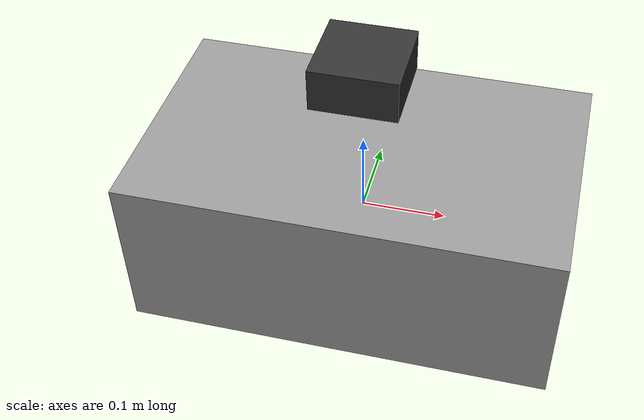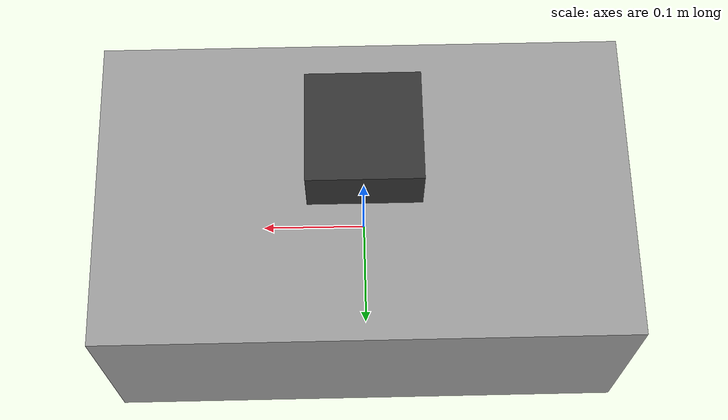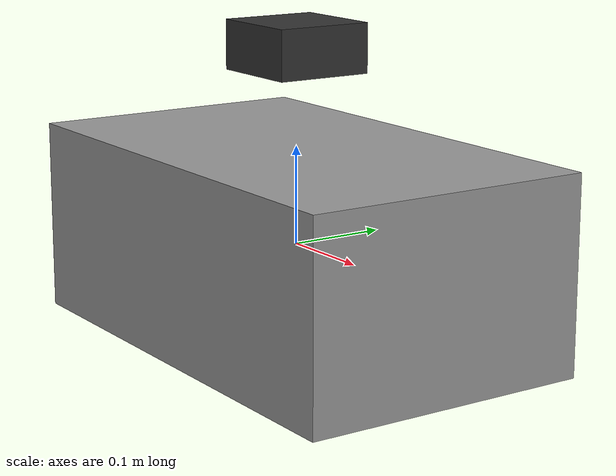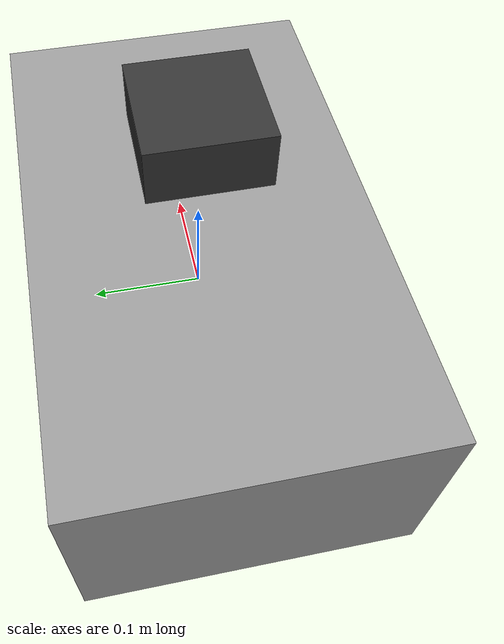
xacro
<?xml version="1.0" ?>
<robot name="mobile_robot">
  <!-- Robot base -->
  <link name="base_link">
    <visual>
      <geometry>
        <box size="0.5 0.3 0.2"/>
      </geometry>
      <material name="base_color">
        <color rgba="0.6 0.6 0.6 1.0"/>
      </material>
    </visual>
  </link>

  <!-- Stereo camera -->
  <link name="stereo_camera">
    <visual>
      <geometry>
        <box size="0.1 0.1 0.05"/>
      </geometry>
      <material name="camera_color">
        <color rgba="0.2 0.2 0.2 1.0"/>
      </material>
    </visual>
  </link>

  <!-- Joint connecting camera to base -->
  <joint name="camera_joint" type="fixed">
    <parent link="base_link"/>
    <child link="stereo_camera"/>
    <origin xyz="0.0 0.0 0.2"/> <!-- Adjust position as necessary -->
  </joint>

  <!-- Left and Right Wheels -->
  <link name="left_wheel"/>
  <link name="right_wheel"/>

  <joint name="left_wheel_joint" type="continuous">
    <parent link="base_link"/>
    <child link="left_wheel"/>
    <origin xyz="-0.1 0.15 0.0"/>
    <axis xyz="0 1 0"/>
  </joint>

  <joint name="right_wheel_joint" type="continuous">
    <parent link="base_link"/>
    <child link="right_wheel"/>
    <origin xyz="-0.1 -0.15 0.0"/>
    <axis xyz="0 1 0"/>
  </joint>

  <!-- Differential drive plugin -->
  <gazebo>
    <plugin filename="libgazebo_ros_diff_drive.so" name="diff_drive_controller">
      <ros>
        <namespace>/</namespace>
        <remapping>cmd_vel:=/cmd_vel</remapping>
        <remapping>odom:=/odom</remapping>
      </ros>
      <left_joint>left_wheel_joint</left_joint>
      <right_joint>right_wheel_joint</right_joint>
      <wheel_separation>0.3</wheel_separation>
      <wheel_diameter>0.15</wheel_diameter>
    </plugin>
  </gazebo>

  <!-- Left and right stereo cameras -->
  <gazebo reference="stereo_camera">
    <sensor name="left_camera" type="camera">
      <camera name="left_camera">
        <horizontal_fov>1.047</horizontal_fov>
        <image>
          <width>640</width>
          <height>480</height>
          <format>R8G8B8</format>
        </image>
        <clip>
          <near>0.1</near>
          <far>100</far>
        </clip>
      </camera>
      <plugin filename="libgazebo_ros_camera.so" name="camera_controller">
        <always_on>true</always_on>
        <update_rate>30.0</update_rate>
        <camera_name>left_camera</camera_name>
        <image_topic_name>/stereo_camera/left/image_raw</image_topic_name>
      </plugin>
    </sensor>
    <sensor name="right_camera" type="camera">
      <camera name="right_camera">
        <horizontal_fov>1.047</horizontal_fov>
        <image>
          <width>640</width>
          <height>480</height>
          <format>R8G8B8</format>
        </image>
        <clip>
          <near>0.1</near>
          <far>100</far>
        </clip>
      </camera>
      <plugin filename="libgazebo_ros_camera.so" name="camera_controller">
        <always_on>true</always_on>
        <update_rate>30.0</update_rate>
        <camera_name>right_camera</camera_name>
        <image_topic_name>/stereo_camera/right/image_raw</image_topic_name>
      </plugin>
    </sensor>
  </gazebo>
</robot>
